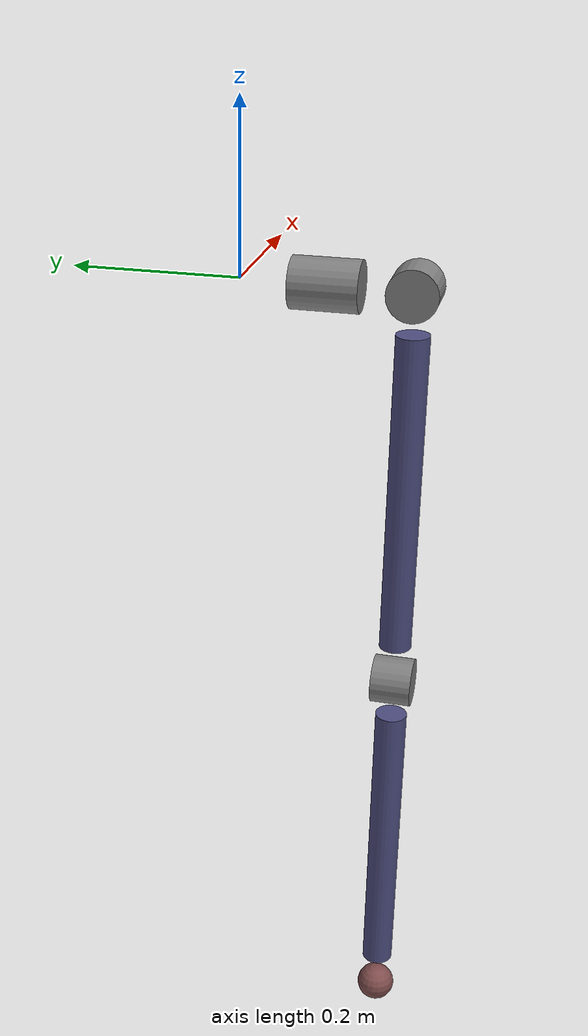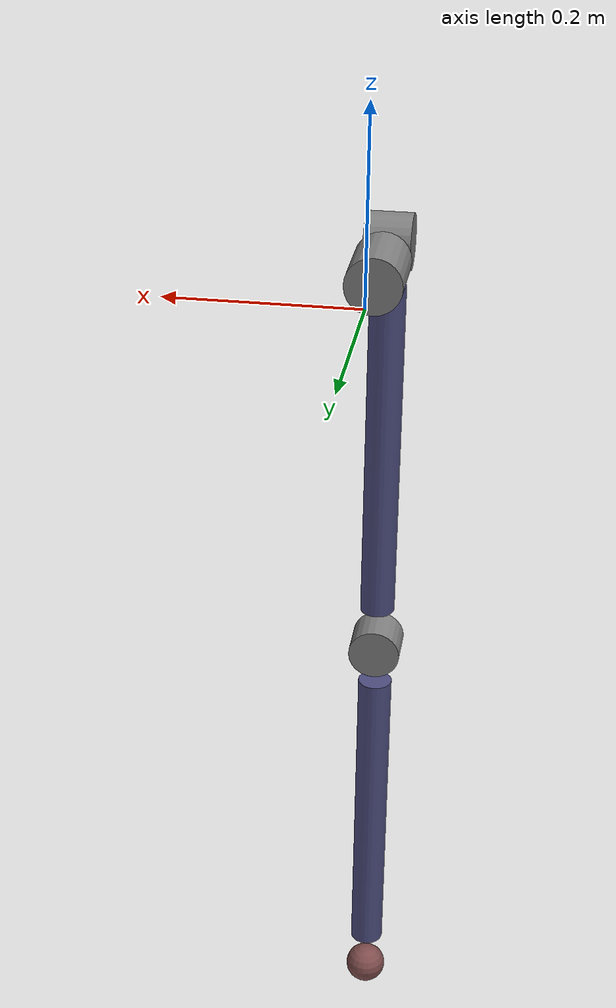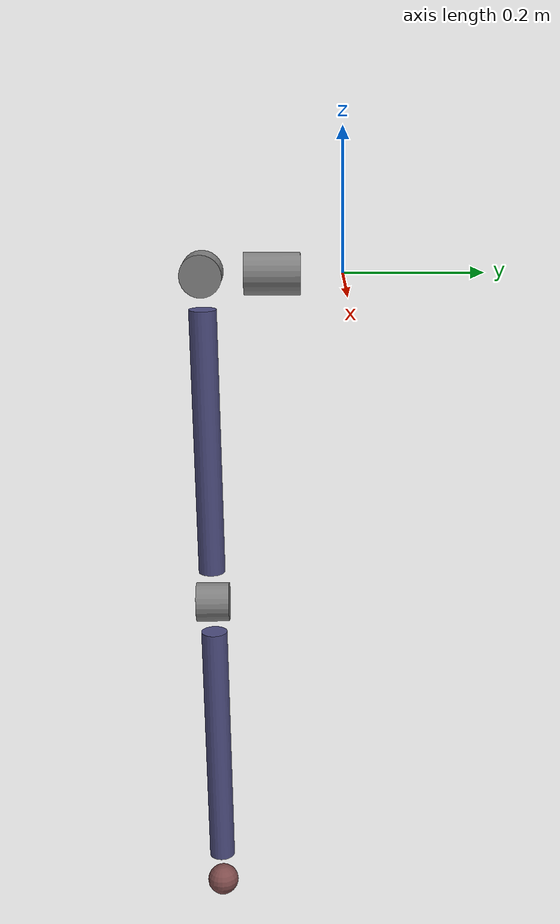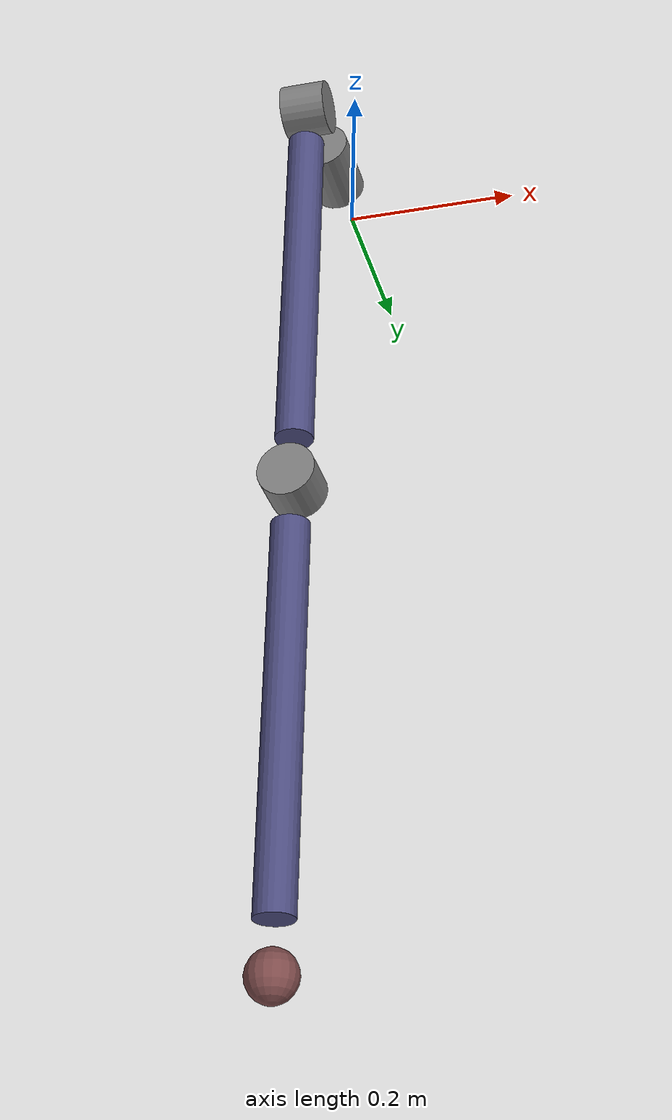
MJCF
<mujoco>
  <compiler coordinate="local" angle="degree"/>
  <option timestep="0.001" iterations="100" tolerance="1e-10" solver="Newton" gravity="0 0 -9.81"/>

  <visual>
    <quality shadowsize="2048" offsamples="4"/>
    <headlight ambient="0.5 0.5 0.5"  diffuse="0.4 0.4 0.4" specular="0.5 0.5 0.5"/>
  </visual>

  <asset>
    <texture type="skybox" builtin="gradient" rgb1="0.8 0.8 0.8" rgb2="0.8 0.8 0.8" width="512" height="512"/>
  </asset>

  <worldbody>
    <light pos="0 1 1" dir="0 -1 -1" diffuse="1 1 1"/>
    <body>
      <joint name="joint1" type="hinge" pos="0 -0.1 0" axis="0 -1 0" frictionloss="0.5" damping="0.5"/>
      <geom type="cylinder" pos="0 -0.1 0" euler="90 0 0" size="0.03 0.04" mass="1" rgba="0.5 0.5 0.5 1"/>
      <body>
	<joint name="joint2" type="hinge" pos="0 -0.2 0" axis="-1 0 0" frictionloss="0.5" damping="0.5"/>
	<geom type="cylinder" pos="0 -0.2 0" euler="0 90 0" size="0.03 0.025" mass="0" rgba="0.5 0.5 0.5 1"/>
	<geom type="cylinder" fromto="0 -0.2 -0.05  0 -0.2 -0.45" size="0.02" mass="1" rgba="0.3 0.3 0.5 1"/>
	<body>
	  <joint name="joint3" type="hinge" pos="0 -0.2 -0.5" axis="0 -1 0" frictionloss="0.5" damping="0.5"/>
	  <geom type="cylinder" pos="0 -0.2 -0.5" euler="90 0 0" size="0.03 0.025" mass="0" rgba="0.5 0.5 0.5 1"/>
	  <geom type="cylinder" fromto="0 -0.2 -0.55  0 -0.2 -0.95" size="0.02" mass="1" rgba="0.3 0.3 0.5 1"/>
	  <body>
 	    <geom type="sphere" pos="0 -0.2 -1.0" size="0.025" mass="0" rgba="0.5 0.3 0.3 1"/>
	  </body>
	</body>
      </body>
    </body>
  </worldbody>

  <actuator>
    <motor name="motor1" joint="joint1" />
    <motor name="motor2" joint="joint2" />
    <motor name="motor3" joint="joint3" />
  </actuator>

  <sensor>
    <jointpos joint="joint1"/>
    <jointpos joint="joint2"/>
    <jointpos joint="joint3"/>

    <jointvel joint="joint1"/>
    <jointvel joint="joint2"/>
    <jointvel joint="joint3"/>
  </sensor>
</mujoco>
